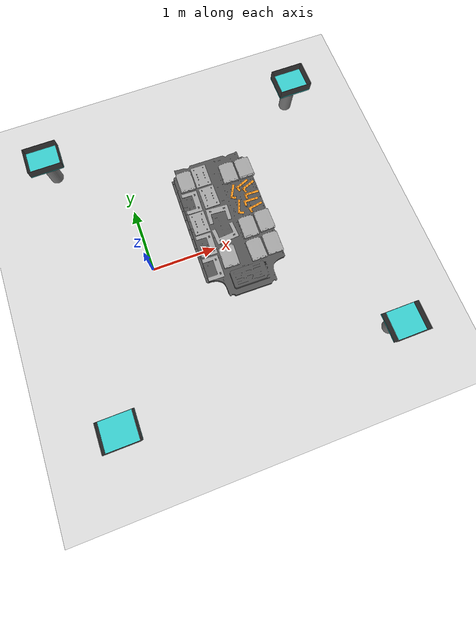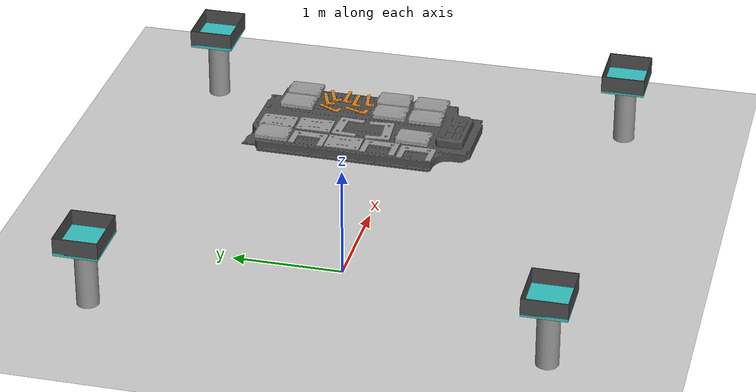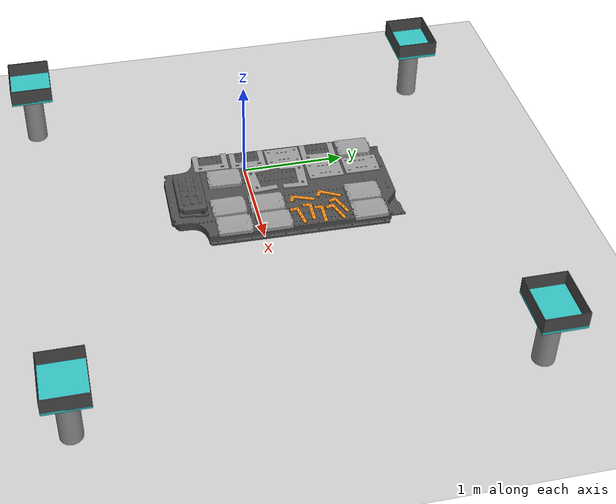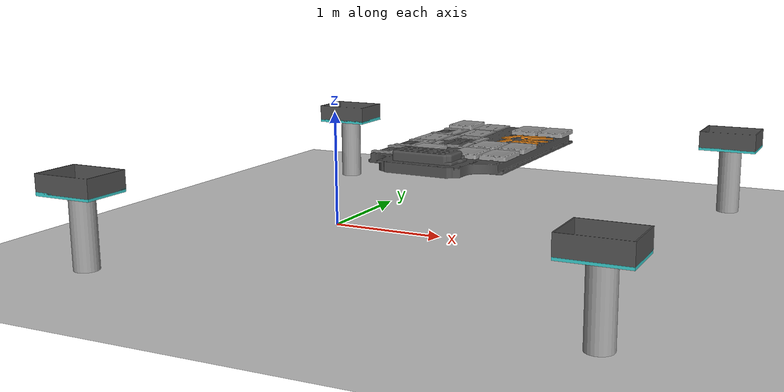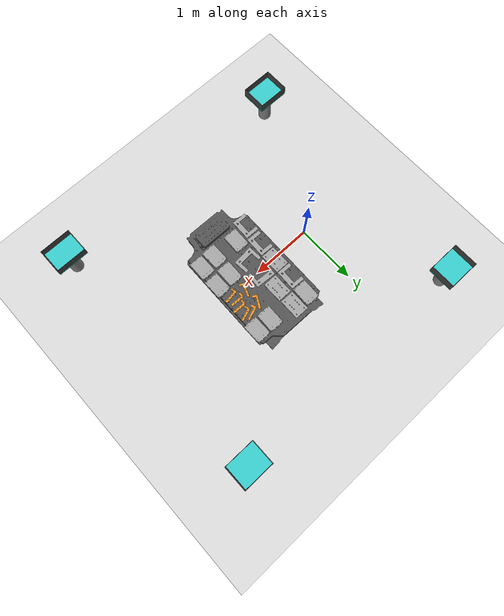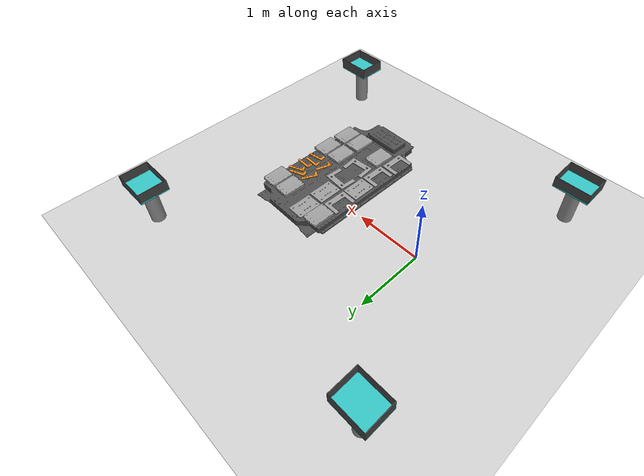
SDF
<sdf version="1.6">
 <world name="default">
  <scene><shadows>0</shadows><ambient>0.4 0.4 0.4 1</ambient><background>0.7 0.7 0.7 1</background></scene>
  <model name="ground_plane">
   <static>1</static>
   <link name="link">
    <collision name="collision">
     <geometry><plane><normal>0 0 1</normal><size>100 100</size></plane></geometry>
     <surface><friction><ode><mu>100</mu><mu2>50</mu2></ode></friction></surface>
    </collision>
    <visual name="visual">
     <cast_shadows>0</cast_shadows>
     <geometry><plane><normal>0 0 1</normal><size>100 100</size></plane></geometry>
     <material>
      <script><uri>file://media/materials/scripts/gazebo.material</uri><name>PR2/Grey3</name></script>
     </material>
    </visual>
   </link>
  </model>
  <light name="sun" type="directional">
   <pose>0 0 10 0 -0 0</pose>
   <diffuse>0.8 0.8 0.8 1</diffuse>
   <specular>0.2 0.2 0.2 1</specular>
   <attenuation>
    <range>1000</range>
    <constant>0.9</constant>
    <linear>0.01</linear>
    <quadratic>0.001</quadratic>
   </attenuation>
   <direction>-0.5 0.1 -0.9</direction>
  </light>
  <model name="tesla_battery">
   <static>1</static>
   <link name="link0">
    <collision name="collision">
     <pose>0.05 0.15 -0.05445 0 -0 0</pose>
     <geometry><box><size>1.1 1.9 0.12</size></box></geometry>
     <surface><friction><ode><mu>1</mu><mu2>1</mu2></ode></friction></surface>
    </collision>
    <visual name="visual">
     <geometry><mesh><uri>model://tesla_battery_v2/meshes/tesla_batteryv2.dae</uri></mesh></geometry>
     <material>
      <script><uri>file://media/materials/scripts/gazebo.material</uri><name>Gazebo/DarkGrey</name></script>
     </material>
    </visual>
   </link>
   <pose>1.25074 -0.011072 0.8 0 -0 0</pose>
  </model>
  <model name="tesla_battery_support">
   <static>1</static>
   <link name="link0">
    <collision name="collision"><geometry><box><size>0.7 2.8 0.5</size></box></geometry></collision>
   </link>
   <pose>1.3 0 0.25 0 -0 0</pose>
  </model>
  <model name="bin_1">
   <static>1</static>
   <link name="column_link">
    <collision name="column">
     <pose>0 0 0.3 0 -0 0</pose>
     <geometry><box><size>0.4 0.5 0.6</size></box></geometry>
     <surface><friction><ode><mu>0.6</mu><mu2>0.6</mu2></ode></friction></surface>
    </collision>
    <visual name="column">
     <pose>0 0 0.3 0 -0 0</pose>
     <geometry><cylinder><radius>0.1</radius><length>0.6</length></cylinder></geometry>
     <material>
      <script><uri>file://media/materials/scripts/gazebo.material</uri><name>PR2/Grey4</name></script>
     </material>
    </visual>
   </link>
   <joint name="column2table" type="revolute">
    <parent>column_link</parent>
    <child>table_link</child>
    <pose>0 0 0.3 0 -0 0</pose>
   </joint>
   <link name="table_link">
    <collision name="surface">
     <pose>0 0 0.6 0 -0 0</pose>
     <geometry><box><size>0.5 0.4 0.03</size></box></geometry>
     <surface><friction><ode><mu>0.6</mu><mu2>0.6</mu2></ode></friction></surface>
    </collision>
    <visual name="surface">
     <pose>0 0 0.6 0 -0 0</pose>
     <geometry><box><size>0.5 0.4 0.03</size></box></geometry>
     <material>
      <script><uri>file://media/materials/scripts/gazebo.material</uri><name>Gazebo/Turquoise</name></script>
     </material>
    </visual>
   </link>
   <joint name="table2bin" type="prismatic">
    <parent>table_link</parent>
    <child>bin_link</child>
    <pose>0 0 1 0 -0 0</pose>
    <axis>
     <xyz>0 0 1</xyz>
     <use_parent_model_frame>0</use_parent_model_frame>
     <limit><lower>-1e+16</lower><upper>1e+16</upper></limit>
     <dynamics><spring_reference>0</spring_reference><spring_stiffness>0</spring_stiffness></dynamics>
    </axis>
   </joint>
   <link name="bin_link">
    <collision name="bin">
     <pose>0 0 0.68 0 -0 0</pose>
     <geometry><mesh><uri>model://table_bin/meshes/big_bin.stl</uri></mesh></geometry>
    </collision>
    <visual name="bin">
     <pose>0 0 0.68 0 -0 0</pose>
     <geometry><mesh><uri>model://table_bin/meshes/big_bin.dae</uri></mesh></geometry>
     <material>
      <script><uri>file://media/materials/scripts/gazebo.material</uri><name>Gazebo/DarkGrey</name></script>
     </material>
    </visual>
   </link>
   <pose>-1 2 0 0 -0 0</pose>
  </model>
  <model name="bin_2">
   <static>1</static>
   <link name="column_link">
    <collision name="column">
     <pose>0 0 0.3 0 -0 0</pose>
     <geometry><box><size>0.4 0.5 0.6</size></box></geometry>
     <surface><friction><ode><mu>0.6</mu><mu2>0.6</mu2></ode></friction></surface>
    </collision>
    <visual name="column">
     <pose>0 0 0.3 0 -0 0</pose>
     <geometry><cylinder><radius>0.1</radius><length>0.6</length></cylinder></geometry>
     <material>
      <script><uri>file://media/materials/scripts/gazebo.material</uri><name>PR2/Grey4</name></script>
     </material>
    </visual>
   </link>
   <joint name="column2table" type="revolute">
    <parent>column_link</parent>
    <child>table_link</child>
    <pose>0 0 0.3 0 -0 0</pose>
   </joint>
   <link name="table_link">
    <collision name="surface">
     <pose>0 0 0.6 0 -0 0</pose>
     <geometry><box><size>0.5 0.4 0.03</size></box></geometry>
     <surface><friction><ode><mu>0.6</mu><mu2>0.6</mu2></ode></friction></surface>
    </collision>
    <visual name="surface">
     <pose>0 0 0.6 0 -0 0</pose>
     <geometry><box><size>0.5 0.4 0.03</size></box></geometry>
     <material>
      <script><uri>file://media/materials/scripts/gazebo.material</uri><name>Gazebo/Turquoise</name></script>
     </material>
    </visual>
   </link>
   <joint name="table2bin" type="prismatic">
    <parent>table_link</parent>
    <child>bin_link</child>
    <pose>0 0 1 0 -0 0</pose>
    <axis>
     <xyz>0 0 1</xyz>
     <use_parent_model_frame>0</use_parent_model_frame>
     <limit><lower>-1e+16</lower><upper>1e+16</upper></limit>
     <dynamics><spring_reference>0</spring_reference><spring_stiffness>0</spring_stiffness></dynamics>
    </axis>
   </joint>
   <link name="bin_link">
    <collision name="bin">
     <pose>0 0 0.68 0 -0 0</pose>
     <geometry><mesh><uri>model://table_bin/meshes/big_bin.stl</uri></mesh></geometry>
    </collision>
    <visual name="bin">
     <pose>0 0 0.68 0 -0 0</pose>
     <geometry><mesh><uri>model://table_bin/meshes/big_bin.dae</uri></mesh></geometry>
     <material>
      <script><uri>file://media/materials/scripts/gazebo.material</uri><name>Gazebo/DarkGrey</name></script>
     </material>
    </visual>
   </link>
   <pose>-1 -2 0 0 -0 0</pose>
  </model>
  <model name="bin_3">
   <static>1</static>
   <link name="column_link">
    <collision name="column">
     <pose>0 0 0.3 0 -0 0</pose>
     <geometry><box><size>0.4 0.5 0.6</size></box></geometry>
     <surface><friction><ode><mu>0.6</mu><mu2>0.6</mu2></ode></friction></surface>
    </collision>
    <visual name="column">
     <pose>0 0 0.3 0 -0 0</pose>
     <geometry><cylinder><radius>0.1</radius><length>0.6</length></cylinder></geometry>
     <material>
      <script><uri>file://media/materials/scripts/gazebo.material</uri><name>PR2/Grey4</name></script>
     </material>
    </visual>
   </link>
   <joint name="column2table" type="revolute">
    <parent>column_link</parent>
    <child>table_link</child>
    <pose>0 0 0.3 0 -0 0</pose>
   </joint>
   <link name="table_link">
    <collision name="surface">
     <pose>0 0 0.6 0 -0 0</pose>
     <geometry><box><size>0.5 0.4 0.03</size></box></geometry>
     <surface><friction><ode><mu>0.6</mu><mu2>0.6</mu2></ode></friction></surface>
    </collision>
    <visual name="surface">
     <pose>0 0 0.6 0 -0 0</pose>
     <geometry><box><size>0.5 0.4 0.03</size></box></geometry>
     <material>
      <script><uri>file://media/materials/scripts/gazebo.material</uri><name>Gazebo/Turquoise</name></script>
     </material>
    </visual>
   </link>
   <joint name="table2bin" type="prismatic">
    <parent>table_link</parent>
    <child>bin_link</child>
    <pose>0 0 1 0 -0 0</pose>
    <axis>
     <xyz>0 0 1</xyz>
     <use_parent_model_frame>0</use_parent_model_frame>
     <limit><lower>-1e+16</lower><upper>1e+16</upper></limit>
     <dynamics><spring_reference>0</spring_reference><spring_stiffness>0</spring_stiffness></dynamics>
    </axis>
   </joint>
   <link name="bin_link">
    <collision name="bin">
     <pose>0 0 0.68 0 -0 0</pose>
     <geometry><mesh><uri>model://table_bin/meshes/big_bin.stl</uri></mesh></geometry>
    </collision>
    <visual name="bin">
     <pose>0 0 0.68 0 -0 0</pose>
     <geometry><mesh><uri>model://table_bin/meshes/big_bin.dae</uri></mesh></geometry>
     <material>
      <script><uri>file://media/materials/scripts/gazebo.material</uri><name>Gazebo/DarkGrey</name></script>
     </material>
    </visual>
   </link>
   <pose>3 -2 0 0 -0 0</pose>
  </model>
  <model name="bin_4">
   <static>1</static>
   <link name="column_link">
    <collision name="column">
     <pose>0 0 0.3 0 -0 0</pose>
     <geometry><box><size>0.4 0.5 0.6</size></box></geometry>
     <surface><friction><ode><mu>0.6</mu><mu2>0.6</mu2></ode></friction></surface>
    </collision>
    <visual name="column">
     <pose>0 0 0.3 0 -0 0</pose>
     <geometry><cylinder><radius>0.1</radius><length>0.6</length></cylinder></geometry>
     <material>
      <script><uri>file://media/materials/scripts/gazebo.material</uri><name>PR2/Grey4</name></script>
     </material>
    </visual>
   </link>
   <joint name="column2table" type="revolute">
    <parent>column_link</parent>
    <child>table_link</child>
    <pose>0 0 0.3 0 -0 0</pose>
   </joint>
   <link name="table_link">
    <collision name="surface">
     <pose>0 0 0.6 0 -0 0</pose>
     <geometry><box><size>0.5 0.4 0.03</size></box></geometry>
     <surface><friction><ode><mu>0.6</mu><mu2>0.6</mu2></ode></friction></surface>
    </collision>
    <visual name="surface">
     <pose>0 0 0.6 0 -0 0</pose>
     <geometry><box><size>0.5 0.4 0.03</size></box></geometry>
     <material>
      <script><uri>file://media/materials/scripts/gazebo.material</uri><name>Gazebo/Turquoise</name></script>
     </material>
    </visual>
   </link>
   <joint name="table2bin" type="prismatic">
    <parent>table_link</parent>
    <child>bin_link</child>
    <pose>0 0 1 0 -0 0</pose>
    <axis>
     <xyz>0 0 1</xyz>
     <use_parent_model_frame>0</use_parent_model_frame>
     <limit><lower>-1e+16</lower><upper>1e+16</upper></limit>
     <dynamics><spring_reference>0</spring_reference><spring_stiffness>0</spring_stiffness></dynamics>
    </axis>
   </joint>
   <link name="bin_link">
    <collision name="bin">
     <pose>0 0 0.68 0 -0 0</pose>
     <geometry><mesh><uri>model://table_bin/meshes/big_bin.stl</uri></mesh></geometry>
    </collision>
    <visual name="bin">
     <pose>0 0 0.68 0 -0 0</pose>
     <geometry><mesh><uri>model://table_bin/meshes/big_bin.dae</uri></mesh></geometry>
     <material>
      <script><uri>file://media/materials/scripts/gazebo.material</uri><name>Gazebo/DarkGrey</name></script>
     </material>
    </visual>
   </link>
   <pose>3 2 0 0 -0 0</pose>
  </model>
  <model name="leaf6">
   <static>0</static>
   <link name="leaf_cell_link">
    <collision name="collision">
     <geometry><box><size>0.2228 0.3149 0.035</size></box></geometry>
     <surface><friction><ode><mu>1</mu><mu2>1</mu2></ode></friction></surface>
    </collision>
    <visual name="visual">
     <geometry><mesh><uri>model://leaf_cell/meshes/leaf_cell.dae</uri></mesh></geometry>
     <material>
      <script><uri>file://media/materials/scripts/gazebo.material</uri><name>Gazebo/Grey</name></script>
     </material>
    </visual>
    <inertial>
     <pose>0 0 0 0 0 -1.5707</pose>
     <mass>0.1</mass>
     <inertia>
      <ixx>0.000539835</ixx>
      <iyy>0.00075853</iyy>
      <izz>0.0012813</izz>
      <ixy>0</ixy>
      <ixz>0</ixz>
      <iyz>0</iyz>
     </inertia>
    </inertial>
   </link>
   <pose>1.72897 0.780468 0.82305 -0 -0 -0.001633</pose>
  </model>
  <model name="leaf66">
   <static>0</static>
   <link name="leaf_cell_link">
    <collision name="collision">
     <geometry><box><size>0.2228 0.3149 0.035</size></box></geometry>
     <surface><friction><ode><mu>1</mu><mu2>1</mu2></ode></friction></surface>
    </collision>
    <visual name="visual">
     <geometry><mesh><uri>model://leaf_cell/meshes/leaf_cell.dae</uri></mesh></geometry>
     <material>
      <script><uri>file://media/materials/scripts/gazebo.material</uri><name>Gazebo/Grey</name></script>
     </material>
    </visual>
    <inertial>
     <pose>0 0 0 0 0 -1.5707</pose>
     <mass>0.1</mass>
     <inertia>
      <ixx>0.000539835</ixx>
      <iyy>0.00075853</iyy>
      <izz>0.0012813</izz>
      <ixy>0</ixy>
      <ixz>0</ixz>
      <iyz>0</iyz>
     </inertia>
    </inertial>
   </link>
   <pose>1.49055 0.784628 0.823044 0 -5.4e-05 -0.028102</pose>
  </model>
  <model name="leaf5">
   <static>0</static>
   <link name="leaf_cell_link">
    <collision name="collision">
     <geometry><box><size>0.2228 0.3149 0.035</size></box></geometry>
     <surface><friction><ode><mu>1</mu><mu2>1</mu2></ode></friction></surface>
    </collision>
    <visual name="visual">
     <geometry><mesh><uri>model://leaf_cell/meshes/leaf_cell.dae</uri></mesh></geometry>
     <material>
      <script><uri>file://media/materials/scripts/gazebo.material</uri><name>Gazebo/Grey</name></script>
     </material>
    </visual>
    <inertial>
     <pose>0 0 0 0 0 -1.5707</pose>
     <mass>0.1</mass>
     <inertia>
      <ixx>0.000539835</ixx>
      <iyy>0.00075853</iyy>
      <izz>0.0012813</izz>
      <ixy>0</ixy>
      <ixz>0</ixz>
      <iyz>0</iyz>
     </inertia>
    </inertial>
   </link>
   <pose>1.70982 -0.060644 0.82305 0 -0 0.005826</pose>
  </model>
  <model name="leaf55">
   <static>0</static>
   <link name="leaf_cell_link">
    <collision name="collision">
     <geometry><box><size>0.2228 0.3149 0.035</size></box></geometry>
     <surface><friction><ode><mu>1</mu><mu2>1</mu2></ode></friction></surface>
    </collision>
    <visual name="visual">
     <geometry><mesh><uri>model://leaf_cell/meshes/leaf_cell.dae</uri></mesh></geometry>
     <material>
      <script><uri>file://media/materials/scripts/gazebo.material</uri><name>Gazebo/Grey</name></script>
     </material>
    </visual>
    <inertial>
     <pose>0 0 0 0 0 -1.5707</pose>
     <mass>0.1</mass>
     <inertia>
      <ixx>0.000539835</ixx>
      <iyy>0.00075853</iyy>
      <izz>0.0012813</izz>
      <ixy>0</ixy>
      <ixz>0</ixz>
      <iyz>0</iyz>
     </inertia>
    </inertial>
   </link>
   <pose>1.46881 -0.076348 0.82305 0 0 -0.022437</pose>
  </model>
  <model name="leaf4">
   <static>0</static>
   <link name="leaf_cell_link">
    <collision name="collision">
     <geometry><box><size>0.2228 0.3149 0.035</size></box></geometry>
     <surface><friction><ode><mu>1</mu><mu2>1</mu2></ode></friction></surface>
    </collision>
    <visual name="visual">
     <geometry><mesh><uri>model://leaf_cell/meshes/leaf_cell.dae</uri></mesh></geometry>
     <material>
      <script><uri>file://media/materials/scripts/gazebo.material</uri><name>Gazebo/Grey</name></script>
     </material>
    </visual>
    <inertial>
     <pose>0 0 0 0 0 -1.5707</pose>
     <mass>0.1</mass>
     <inertia>
      <ixx>0.000539835</ixx>
      <iyy>0.00075853</iyy>
      <izz>0.0012813</izz>
      <ixy>0</ixy>
      <ixz>0</ixz>
      <iyz>0</iyz>
     </inertia>
    </inertial>
   </link>
   <pose>1.69526 -0.405349 0.82305 0 0 -0.015504</pose>
  </model>
  <model name="leaf44">
   <static>0</static>
   <link name="leaf_cell_link">
    <collision name="collision">
     <geometry><box><size>0.2228 0.3149 0.035</size></box></geometry>
     <surface><friction><ode><mu>1</mu><mu2>1</mu2></ode></friction></surface>
    </collision>
    <visual name="visual">
     <geometry><mesh><uri>model://leaf_cell/meshes/leaf_cell.dae</uri></mesh></geometry>
     <material>
      <script><uri>file://media/materials/scripts/gazebo.material</uri><name>Gazebo/Grey</name></script>
     </material>
    </visual>
    <inertial>
     <pose>0 0 0 0 0 -1.5707</pose>
     <mass>0.1</mass>
     <inertia>
      <ixx>0.000539835</ixx>
      <iyy>0.00075853</iyy>
      <izz>0.0012813</izz>
      <ixy>0</ixy>
      <ixz>0</ixz>
      <iyz>0</iyz>
     </inertia>
    </inertial>
   </link>
   <pose>1.45347 -0.412476 0.82305 0 -0 0.009459</pose>
  </model>
  <model name="leaf1">
   <static>0</static>
   <link name="leaf_cell_link">
    <collision name="collision">
     <geometry><box><size>0.2228 0.3149 0.035</size></box></geometry>
     <surface><friction><ode><mu>1</mu><mu2>1</mu2></ode></friction></surface>
    </collision>
    <visual name="visual">
     <geometry><mesh><uri>model://leaf_cell/meshes/leaf_cell.dae</uri></mesh></geometry>
     <material>
      <script><uri>file://media/materials/scripts/gazebo.material</uri><name>Gazebo/Grey</name></script>
     </material>
    </visual>
    <inertial>
     <pose>0 0 0 0 0 -1.5707</pose>
     <mass>0.1</mass>
     <inertia>
      <ixx>0.000539835</ixx>
      <iyy>0.00075853</iyy>
      <izz>0.0012813</izz>
      <ixy>0</ixy>
      <ixz>0</ixz>
      <iyz>0</iyz>
     </inertia>
    </inertial>
   </link>
   <pose>0.867479 0.856729 0.823044 -0 -5.4e-05 -0.025219</pose>
  </model>
  <model name="plate_a_1">
   <static>0</static>
   <link name="link0">
    <collision name="collision">
     <geometry><mesh><uri>model://plate_a/meshes/plate_a_centroid.stl</uri></mesh></geometry>
     <surface><friction><ode><mu>0.99</mu><mu2>0.99</mu2></ode></friction></surface>
    </collision>
    <visual name="visual">
     <geometry><mesh><uri>model://plate_a/meshes/plate_a_centroid.dae</uri></mesh></geometry>
     <material>
      <script><uri>file://media/materials/scripts/gazebo.material</uri><name>PR2/Grey1</name></script>
     </material>
    </visual>
    <inertial>
     <mass>0.1</mass>
     <inertia>
      <ixx>0.00082718</ixx>
      <ixy>0</ixy>
      <ixz>0</ixz>
      <iyy>0.00043403</iyy>
      <iyz>0</iyz>
      <izz>0.00125955</izz>
     </inertia>
    </inertial>
   </link>
   <pose>0.902877 0.523112 0.810545 6.1e-05 -7e-06 -0.037146</pose>
  </model>
  <model name="leaf2">
   <static>0</static>
   <link name="leaf_cell_link">
    <collision name="collision">
     <geometry><box><size>0.2228 0.3149 0.035</size></box></geometry>
     <surface><friction><ode><mu>1</mu><mu2>1</mu2></ode></friction></surface>
    </collision>
    <visual name="visual">
     <geometry><mesh><uri>model://leaf_cell/meshes/leaf_cell.dae</uri></mesh></geometry>
     <material>
      <script><uri>file://media/materials/scripts/gazebo.material</uri><name>Gazebo/Grey</name></script>
     </material>
    </visual>
    <inertial>
     <pose>0 0 0 0 0 -1.5707</pose>
     <mass>0.1</mass>
     <inertia>
      <ixx>0.000539835</ixx>
      <iyy>0.00075853</iyy>
      <izz>0.0012813</izz>
      <ixy>0</ixy>
      <ixz>0</ixz>
      <iyz>0</iyz>
     </inertia>
    </inertial>
   </link>
   <pose>1.06621 -0.382354 0.823044 0 5.4e-05 -0.033728</pose>
  </model>
  <model name="plate_a_2">
   <static>0</static>
   <link name="link0">
    <collision name="collision">
     <geometry><mesh><uri>model://plate_a/meshes/plate_a_centroid.stl</uri></mesh></geometry>
     <surface><friction><ode><mu>0.99</mu><mu2>0.99</mu2></ode></friction></surface>
    </collision>
    <visual name="visual">
     <geometry><mesh><uri>model://plate_a/meshes/plate_a_centroid.dae</uri></mesh></geometry>
     <material>
      <script><uri>file://media/materials/scripts/gazebo.material</uri><name>PR2/Grey1</name></script>
     </material>
    </visual>
    <inertial>
     <mass>0.1</mass>
     <inertia>
      <ixx>0.00082718</ixx>
      <ixy>0</ixy>
      <ixz>0</ixz>
      <iyy>0.00043403</iyy>
      <iyz>0</iyz>
      <izz>0.00125955</izz>
     </inertia>
    </inertial>
   </link>
   <pose>0.886921 -0.132542 0.81055 0 0 -0.033441</pose>
  </model>
  <gravity>0 0 -9.8</gravity>
  <magnetic_field>6e-06 2.3e-05 -4.2e-05</magnetic_field>
  <atmosphere type="adiabatic"/>
  <physics name="default_physics" default="0" type="ode">
   <max_step_size>0.001</max_step_size>
   <real_time_factor>1</real_time_factor>
   <real_time_update_rate>1000</real_time_update_rate>
  </physics>
  <spherical_coordinates>
   <surface_model>EARTH_WGS84</surface_model>
   <latitude_deg>0</latitude_deg>
   <longitude_deg>0</longitude_deg>
   <elevation>0</elevation>
   <heading_deg>0</heading_deg>
  </spherical_coordinates>
  <model name="plate_a_1_clone">
   <static>0</static>
   <link name="link0">
    <collision name="collision">
     <geometry><mesh><uri>model://plate_a/meshes/plate_a_centroid.stl</uri></mesh></geometry>
     <surface><friction><ode><mu>0.99</mu><mu2>0.99</mu2></ode></friction></surface>
    </collision>
    <visual name="visual">
     <geometry><mesh><uri>model://plate_a/meshes/plate_a_centroid.dae</uri></mesh></geometry>
     <material>
      <script><uri>file://media/materials/scripts/gazebo.material</uri><name>PR2/Grey1</name></script>
     </material>
    </visual>
    <inertial>
     <mass>0.1</mass>
     <inertia>
      <ixx>0.00082718</ixx>
      <ixy>0</ixy>
      <ixz>0</ixz>
      <iyy>0.00043403</iyy>
      <iyz>0</iyz>
      <izz>0.00125955</izz>
     </inertia>
    </inertial>
   </link>
   <pose>1.14019 -0.113186 0.810545 -5.5e-05 -2.1e-05 -1.49463</pose>
  </model>
  <model name="plate_a_1_clone_clone">
   <static>0</static>
   <link name="link0">
    <collision name="collision">
     <geometry><mesh><uri>model://plate_a/meshes/plate_a_centroid.stl</uri></mesh></geometry>
     <surface><friction><ode><mu>0.99</mu><mu2>0.99</mu2></ode></friction></surface>
    </collision>
    <visual name="visual">
     <geometry><mesh><uri>model://plate_a/meshes/plate_a_centroid.dae</uri></mesh></geometry>
     <material>
      <script><uri>file://media/materials/scripts/gazebo.material</uri><name>PR2/Grey1</name></script>
     </material>
    </visual>
    <inertial>
     <mass>0.1</mass>
     <inertia>
      <ixx>0.00082718</ixx>
      <ixy>0</ixy>
      <ixz>0</ixz>
      <iyy>0.00043403</iyy>
      <iyz>0</iyz>
      <izz>0.00125955</izz>
     </inertia>
    </inertial>
   </link>
   <pose>0.8631 -0.468902 0.810545 -5.2e-05 -2.7e-05 -0.022812</pose>
  </model>
  <model name="plate_a_2_clone">
   <static>0</static>
   <link name="link0">
    <collision name="collision">
     <geometry><mesh><uri>model://plate_a/meshes/plate_a_centroid.stl</uri></mesh></geometry>
     <surface><friction><ode><mu>0.99</mu><mu2>0.99</mu2></ode></friction></surface>
    </collision>
    <visual name="visual">
     <geometry><mesh><uri>model://plate_a/meshes/plate_a_centroid.dae</uri></mesh></geometry>
     <material>
      <script><uri>file://media/materials/scripts/gazebo.material</uri><name>PR2/Grey1</name></script>
     </material>
    </visual>
    <inertial>
     <mass>0.1</mass>
     <inertia>
      <ixx>0.00082718</ixx>
      <ixy>0</ixy>
      <ixz>0</ixz>
      <iyy>0.00043403</iyy>
      <iyz>0</iyz>
      <izz>0.00125955</izz>
     </inertia>
    </inertial>
   </link>
   <pose>1.14499 0.284518 0.810545 -5.5e-05 -2.1e-05 1.50493</pose>
  </model>
  <audio><device>default</device></audio>
  <model name="plate_b_0">
   <static>0</static>
   <link name="link0">
    <collision name="collision">
     <geometry><mesh><uri>model://plate_b/meshes/plate_b.stl</uri></mesh></geometry>
     <surface><friction><ode><mu>0.99</mu><mu2>0.99</mu2></ode></friction></surface>
    </collision>
    <visual name="visual">
     <geometry><mesh><uri>model://plate_b/meshes/plate_b.dae</uri></mesh></geometry>
     <material>
      <script><uri>file://media/materials/scripts/gazebo.material</uri><name>Gazebo/Grey</name></script>
     </material>
    </visual>
    <inertial>
     <mass>0.1</mass>
     <inertia>
      <ixx>0.0003858</ixx>
      <ixy>0</ixy>
      <ixz>0</ixz>
      <iyy>0.0003858</iyy>
      <iyz>0</iyz>
      <izz>0.000605</izz>
     </inertia>
    </inertial>
   </link>
   <pose>0.848399 0.199272 0.81054 7.5e-05 -2.1e-05 -0.007136</pose>
  </model>
  <model name="plate_b_0_clone">
   <static>0</static>
   <link name="link0">
    <collision name="collision">
     <geometry><mesh><uri>model://plate_b/meshes/plate_b.stl</uri></mesh></geometry>
     <surface><friction><ode><mu>0.99</mu><mu2>0.99</mu2></ode></friction></surface>
    </collision>
    <visual name="visual">
     <geometry><mesh><uri>model://plate_b/meshes/plate_b.dae</uri></mesh></geometry>
     <material>
      <script><uri>file://media/materials/scripts/gazebo.material</uri><name>Gazebo/Grey</name></script>
     </material>
    </visual>
    <inertial>
     <mass>0.1</mass>
     <inertia>
      <ixx>0.0003858</ixx>
      <ixy>0</ixy>
      <ixz>0</ixz>
      <iyy>0.0003858</iyy>
      <iyz>0</iyz>
      <izz>0.000605</izz>
     </inertia>
    </inertial>
   </link>
   <pose>1.10952 0.527143 0.81055 -1e-05 -1.7e-05 -0.001061</pose>
  </model>
  <model name="plate_b_0_clone_clone">
   <static>0</static>
   <link name="link0">
    <collision name="collision">
     <geometry><mesh><uri>model://plate_b/meshes/plate_b.stl</uri></mesh></geometry>
     <surface><friction><ode><mu>0.99</mu><mu2>0.99</mu2></ode></friction></surface>
    </collision>
    <visual name="visual">
     <geometry><mesh><uri>model://plate_b/meshes/plate_b.dae</uri></mesh></geometry>
     <material>
      <script><uri>file://media/materials/scripts/gazebo.material</uri><name>Gazebo/Grey</name></script>
     </material>
    </visual>
    <inertial>
     <mass>0.1</mass>
     <inertia>
      <ixx>0.0003858</ixx>
      <ixy>0</ixy>
      <ixz>0</ixz>
      <iyy>0.0003858</iyy>
      <iyz>0</iyz>
      <izz>0.000605</izz>
     </inertia>
    </inertial>
   </link>
   <pose>1.10272 0.865948 0.81055 4e-06 1e-05 -0.013233</pose>
  </model>
  <model name="bracket">
   <static>0</static>
   <link name="link0">
    <collision name="collision">
     <geometry><box><size>0.18 0.07 0.01</size></box></geometry>
     <surface><friction><ode><mu>0.9</mu><mu2>0.9</mu2></ode></friction></surface>
    </collision>
    <visual name="visual">
     <geometry><mesh><uri>model://bracket/meshes/bracket_modified.dae</uri></mesh></geometry>
     <material>
      <script><uri>file://media/materials/scripts/gazebo.material</uri><name>Gazebo/Orange</name></script>
     </material>
    </visual>
    <inertial>
     <mass>0.1</mass>
     <inertia>
      <ixx>4.17e-05</ixx>
      <ixy>0</ixy>
      <ixz>0</ixz>
      <iyy>0.0002708</iyy>
      <iyz>0</iyz>
      <izz>0.0003108</izz>
     </inertia>
    </inertial>
   </link>
   <pose>1.68093 0.179677 0.810538 -0.000335 0 0.152363</pose>
  </model>
  <model name="bracket_clone">
   <static>0</static>
   <link name="link0">
    <collision name="collision">
     <geometry><box><size>0.18 0.07 0.01</size></box></geometry>
     <surface><friction><ode><mu>0.9</mu><mu2>0.9</mu2></ode></friction></surface>
    </collision>
    <visual name="visual">
     <geometry><mesh><uri>model://bracket/meshes/bracket_modified.dae</uri></mesh></geometry>
     <material>
      <script><uri>file://media/materials/scripts/gazebo.material</uri><name>Gazebo/Orange</name></script>
     </material>
    </visual>
    <inertial>
     <mass>0.1</mass>
     <inertia>
      <ixx>4.17e-05</ixx>
      <ixy>0</ixy>
      <ixz>0</ixz>
      <iyy>0.0002708</iyy>
      <iyz>0</iyz>
      <izz>0.0003108</izz>
     </inertia>
    </inertial>
   </link>
   <pose>1.65203 0.282535 0.810538 -0.000335 0 -0.027011</pose>
  </model>
  <model name="bracket_clone_clone">
   <static>0</static>
   <link name="link0">
    <collision name="collision">
     <geometry><box><size>0.18 0.07 0.01</size></box></geometry>
     <surface><friction><ode><mu>0.9</mu><mu2>0.9</mu2></ode></friction></surface>
    </collision>
    <visual name="visual">
     <geometry><mesh><uri>model://bracket/meshes/bracket_modified.dae</uri></mesh></geometry>
     <material>
      <script><uri>file://media/materials/scripts/gazebo.material</uri><name>Gazebo/Orange</name></script>
     </material>
    </visual>
    <inertial>
     <mass>0.1</mass>
     <inertia>
      <ixx>4.17e-05</ixx>
      <ixy>0</ixy>
      <ixz>0</ixz>
      <iyy>0.0002708</iyy>
      <iyz>0</iyz>
      <izz>0.0003108</izz>
     </inertia>
    </inertial>
   </link>
   <pose>1.70099 0.37687 0.810538 0 0.000133 -0.028043</pose>
  </model>
  <model name="bracket_clone_0">
   <static>0</static>
   <link name="link0">
    <collision name="collision">
     <geometry><box><size>0.18 0.07 0.01</size></box></geometry>
     <surface><friction><ode><mu>0.9</mu><mu2>0.9</mu2></ode></friction></surface>
    </collision>
    <visual name="visual">
     <geometry><mesh><uri>model://bracket/meshes/bracket_modified.dae</uri></mesh></geometry>
     <material>
      <script><uri>file://media/materials/scripts/gazebo.material</uri><name>Gazebo/Orange</name></script>
     </material>
    </visual>
    <inertial>
     <mass>0.1</mass>
     <inertia>
      <ixx>4.17e-05</ixx>
      <ixy>0</ixy>
      <ixz>0</ixz>
      <iyy>0.0002708</iyy>
      <iyz>0</iyz>
      <izz>0.0003108</izz>
     </inertia>
    </inertial>
   </link>
   <pose>1.69624 0.50803 0.810538 -0.000335 0 0.353638</pose>
  </model>
  <model name="bracket_clone_0_clone">
   <static>0</static>
   <link name="link0">
    <collision name="collision">
     <geometry><box><size>0.18 0.07 0.01</size></box></geometry>
     <surface><friction><ode><mu>0.9</mu><mu2>0.9</mu2></ode></friction></surface>
    </collision>
    <visual name="visual">
     <geometry><mesh><uri>model://bracket/meshes/bracket_modified.dae</uri></mesh></geometry>
     <material>
      <script><uri>file://media/materials/scripts/gazebo.material</uri><name>Gazebo/Orange</name></script>
     </material>
    </visual>
    <inertial>
     <mass>0.1</mass>
     <inertia>
      <ixx>4.17e-05</ixx>
      <ixy>0</ixy>
      <ixz>0</ixz>
      <iyy>0.0002708</iyy>
      <iyz>0</iyz>
      <izz>0.0003108</izz>
     </inertia>
    </inertial>
   </link>
   <pose>1.45914 0.249711 0.81055 0 -0 1.21019</pose>
  </model>
  <model name="bracket_clone_0_clone_clone">
   <static>0</static>
   <link name="link0">
    <collision name="collision">
     <geometry><box><size>0.18 0.07 0.01</size></box></geometry>
     <surface><friction><ode><mu>0.9</mu><mu2>0.9</mu2></ode></friction></surface>
    </collision>
    <visual name="visual">
     <geometry><mesh><uri>model://bracket/meshes/bracket_modified.dae</uri></mesh></geometry>
     <material>
      <script><uri>file://media/materials/scripts/gazebo.material</uri><name>Gazebo/Orange</name></script>
     </material>
    </visual>
    <inertial>
     <mass>0.1</mass>
     <inertia>
      <ixx>4.17e-05</ixx>
      <ixy>0</ixy>
      <ixz>0</ixz>
      <iyy>0.0002708</iyy>
      <iyz>0</iyz>
      <izz>0.0003108</izz>
     </inertia>
    </inertial>
   </link>
   <pose>1.44941 0.494419 0.81055 0 -0 1.07512</pose>
  </model>
  <model name="bracket_clone_0_clone_0">
   <static>0</static>
   <link name="link0">
    <collision name="collision">
     <geometry><box><size>0.18 0.07 0.01</size></box></geometry>
     <surface><friction><ode><mu>0.9</mu><mu2>0.9</mu2></ode></friction></surface>
    </collision>
    <visual name="visual">
     <geometry><mesh><uri>model://bracket/meshes/bracket_modified.dae</uri></mesh></geometry>
     <material>
      <script><uri>file://media/materials/scripts/gazebo.material</uri><name>Gazebo/Orange</name></script>
     </material>
    </visual>
    <inertial>
     <mass>0.1</mass>
     <inertia>
      <ixx>4.17e-05</ixx>
      <ixy>0</ixy>
      <ixz>0</ixz>
      <iyy>0.0002708</iyy>
      <iyz>0</iyz>
      <izz>0.0003108</izz>
     </inertia>
    </inertial>
   </link>
   <pose>1.61939 0.554532 0.810538 -0.000335 -0 0.359753</pose>
  </model>
 </world>
</sdf>
